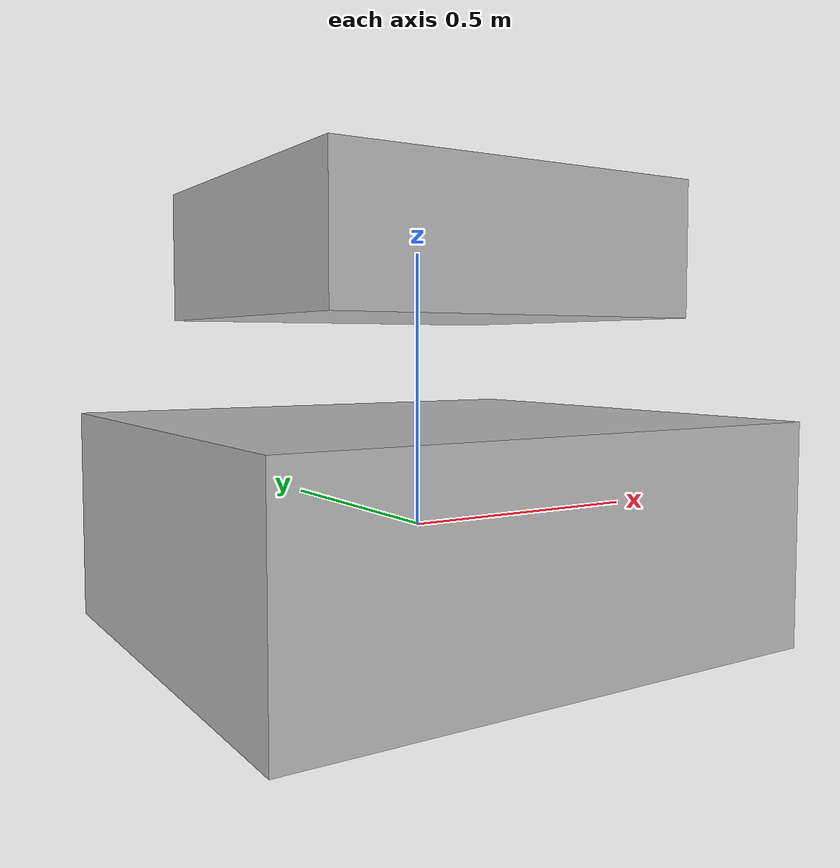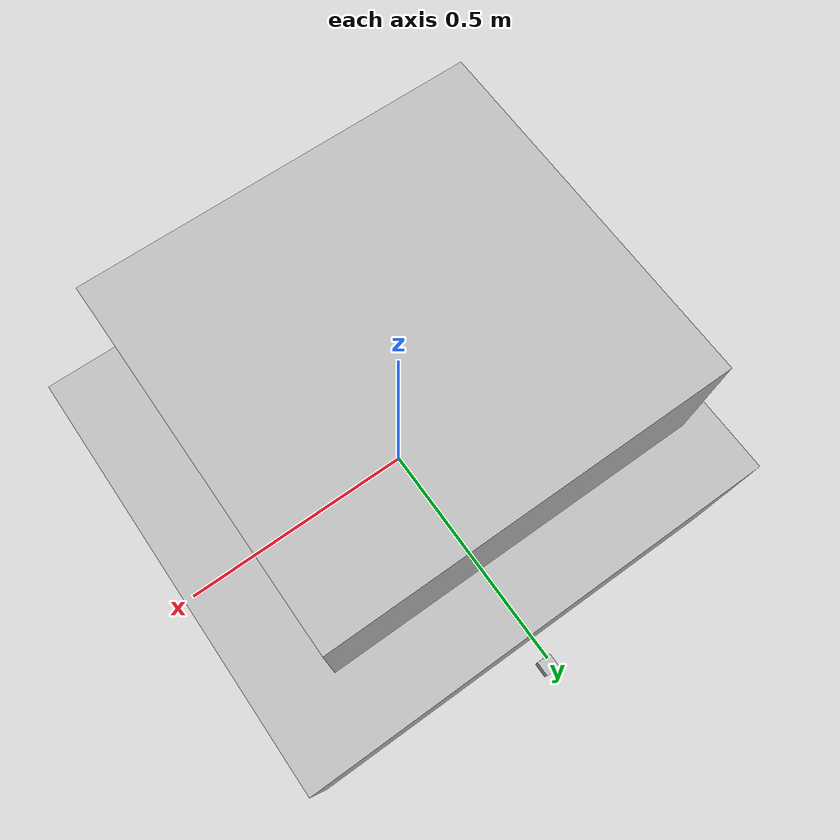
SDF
<?xml version="1.0" ?>
<sdf version="1.6">
  <model name="drawer_test_cabinet">
    <static>false</static>
    <link name="base">
      <collision name="base_col">
        <geometry><box><size>1.0 0.9 0.4</size></box></geometry>
      </collision>
      <visual name="base_vis">
        <geometry><box><size>1.0 0.9 0.4</size></box></geometry>
      </visual>
      <inertial>
        <mass>100.0</mass>
        <inertia>
          <ixx>10.0</ixx><iyy>10.0</iyy><izz>10.0</izz>
          <ixy>0</ixy><ixz>0</ixz><iyz>0</iyz>
        </inertia>
      </inertial>
    </link>
    <link name="drawer">
      <pose>0.0 0.0 0.5 0 0 0</pose>
      <collision name="drawer_col">
        <geometry><box><size>0.7 0.65 0.24</size></box></geometry>
      </collision>
      <visual name="drawer_vis">
        <geometry><box><size>0.7 0.65 0.24</size></box></geometry>
      </visual>
      <inertial>
        <mass>8.0</mass>
        <inertia>
          <ixx>0.5</ixx><iyy>0.3</iyy><izz>0.5</izz>
          <ixy>0</ixy><ixz>0</ixz><iyz>0</iyz>
        </inertia>
      </inertial>
    </link>
    <link name="unlock_button_cap">
      <pose>0.12 0.50 0.62 0 0 0</pose>
      <collision name="cap_col">
        <geometry><box><size>0.02 0.02 0.02</size></box></geometry>
      </collision>
      <visual name="cap_vis">
        <geometry><box><size>0.02 0.02 0.02</size></box></geometry>
      </visual>
      <inertial>
        <mass>0.05</mass>
        <inertia>
          <ixx>1.7e-6</ixx><iyy>1.7e-6</iyy><izz>1.7e-6</izz>
          <ixy>0</ixy><ixz>0</ixz><iyz>0</iyz>
        </inertia>
      </inertial>
    </link>
    <joint name="anchor_base" type="fixed">
      <parent>world</parent>
      <child>base</child>
    </joint>
    <joint name="drawer_slide" type="prismatic">
      <parent>base</parent>
      <child>drawer</child>
      <axis>
        <xyz>1 0 0</xyz>
        <limit><lower>0</lower><upper>0.3</upper><effort>1000</effort><velocity>10</velocity></limit>
      </axis>
    </joint>
    <joint name="unlock_button_slide" type="prismatic">
      <parent>base</parent>
      <child>unlock_button_cap</child>
      <axis>
        <xyz>-1 0 0</xyz>
        <limit><lower>0</lower><upper>0.005</upper><effort>50</effort><velocity>5</velocity></limit>
        <dynamics><damping>0.1</damping><friction>0.3</friction></dynamics>
      </axis>
    </joint>
    <plugin name="xczs_drawer_p2_state" filename="libxczs_cabinet_state.so">
      <ros>
        <namespace>/xczs/cabinet/test</namespace>
      </ros>
      <state_publish_rate>50.0</state_publish_rate>
      <reset_service>/xczs/cabinet/test/reset_physics</reset_service>
      <grasp_service>/xczs/cabinet/test/grasp</grasp_service>
      <bimanual_grasp_service>/xczs/cabinet/test/bimanual_grasp</bimanual_grasp_service>
      <unlock_service>/xczs/cabinet/test/unlock</unlock_service>
      <grasp_active_topic>/xczs/cabinet/test/grasp_active</grasp_active_topic>
      <active_control_topic>/xczs/cabinet/test/active_control</active_control_topic>
      <operation_heartbeat_topic>/xczs/cabinet/test/operation_heartbeat</operation_heartbeat_topic>
      <operation_fault_topic>/xczs/cabinet/test/operation_fault</operation_fault_topic>
      <grasp_distance_threshold>0.12</grasp_distance_threshold>
      <operation_watchdog_timeout>2.0</operation_watchdog_timeout>
      <control>
        <control_id>test_drawer</control_id>
        <control_type>drawer</control_type>
        <joint_name>drawer_slide</joint_name>
        <joint_state_topic>/xczs/cabinet/test/test_drawer/joint_states</joint_state_topic>
        <pressed_topic>/xczs/cabinet/test/test_drawer/pressed</pressed_topic>
        <state_topic>/xczs/cabinet/test/test_drawer/state</state_topic>
        <state_ids>closed open</state_ids>
        <detents>0.0 0.3</detents>
        <detent_stiffness>12</detent_stiffness>
        <spring_damping>1</spring_damping>
        <detent_hysteresis>0.01</detent_hysteresis>
        <motion_tolerance>0.05</motion_tolerance>
        <reset_position>0.0</reset_position>
        <graspable>true</graspable>
        <grasp_point>0.069 0.10 0.12</grasp_point>
        <right_grasp_point>0.069 0.50 0.12</right_grasp_point>
        <unlock_press_point>0.12 0.50 0.12</unlock_press_point>
        <unlock_distance_threshold>0.1</unlock_distance_threshold>
        <unlock_button_id>test_drawer_unlock_button</unlock_button_id>
        <grasp_contact_threshold>0.02</grasp_contact_threshold>
        <coupling_contact_grace_seconds>0.5</coupling_contact_grace_seconds>
        <drawer_latch_stiffness>500</drawer_latch_stiffness>
      </control>
      <control>
        <control_id>test_drawer_unlock_button</control_id>
        <control_type>button</control_type>
        <joint_name>unlock_button_slide</joint_name>
        <joint_state_topic>/xczs/cabinet/test/test_drawer_unlock_button/joint_states</joint_state_topic>
        <pressed_topic>/xczs/cabinet/test/test_drawer_unlock_button/pressed</pressed_topic>
        <state_topic>/xczs/cabinet/test/test_drawer_unlock_button/state</state_topic>
        <state_ids>released pressed</state_ids>
        <spring_stiffness>800</spring_stiffness>
        <spring_damping>8</spring_damping>
        <press_threshold>0.0012</press_threshold>
        <release_threshold>0.0006</release_threshold>
        <reset_position>0.0</reset_position>
      </control>
    </plugin>
  </model>
</sdf>
